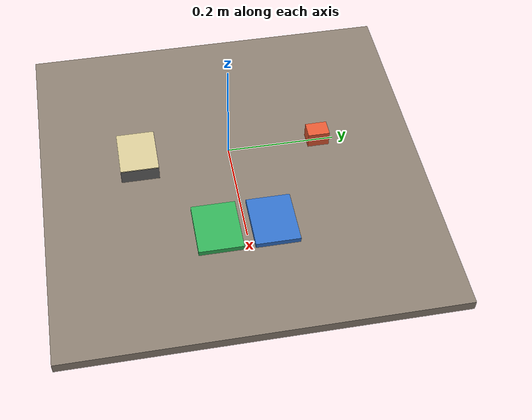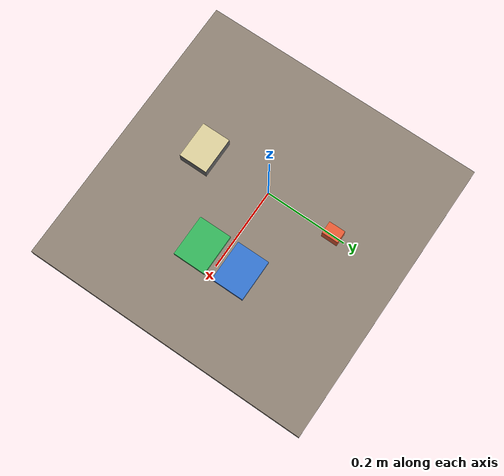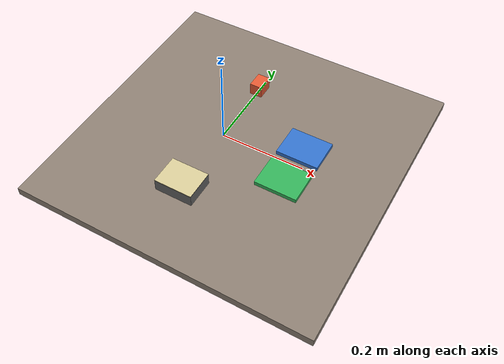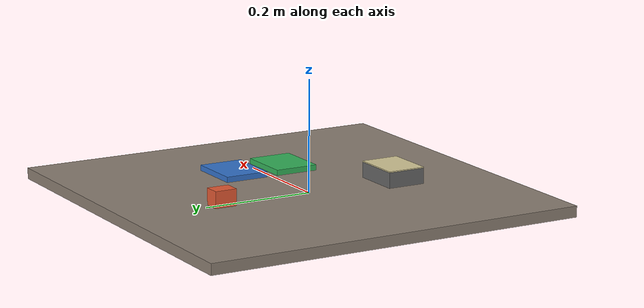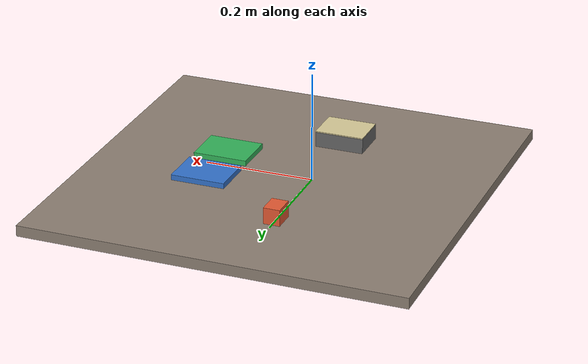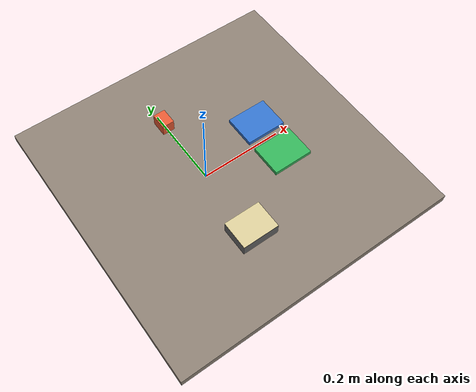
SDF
<?xml version="1.0"?>

<sdf version="1.9">
  <world name="omx_cell_workcell">
    <physics name="physics" type="ignored">
      <max_step_size>0.002</max_step_size><real_time_factor>1</real_time_factor>
    </physics>
    <plugin filename="gz-sim-physics-system" name="gz::sim::systems::Physics"/>
    <plugin filename="gz-sim-user-commands-system" name="gz::sim::systems::UserCommands"/>
    <plugin filename="gz-sim-scene-broadcaster-system" name="gz::sim::systems::SceneBroadcaster"/>
    <light name="sun" type="directional">
      <pose>0 0 10 0 0 0</pose><diffuse>0.9 0.9 0.9 1</diffuse><direction>-0.3 0.2 -1</direction>
    </light>

    <model name="table">
      <static>true</static>
      <pose>0.05 0 -0.01 0 0 0</pose>
      <link name="top">
        <collision name="collision">
          <geometry><box><size>0.7 0.7 0.02</size></box></geometry>
          <surface><friction><ode><mu>1.0</mu><mu2>1.0</mu2></ode></friction></surface>
        </collision>
        <visual name="visual">
          <geometry><box><size>0.7 0.7 0.02</size></box></geometry>
          <material><diffuse>0.55 0.5 0.45 1</diffuse></material>
        </visual>
      </link>
    </model>

    <model name="pallet_a">
      <static>true</static>
      <pose>0.18 0.05 0.005 0 0 0</pose>
      <link name="plate">
        <collision name="collision">
          <geometry><box><size>0.10 0.08 0.01</size></box></geometry>
          <surface><friction><ode><mu>1.0</mu><mu2>1.0</mu2></ode></friction></surface>
        </collision>
        <visual name="visual">
          <geometry><box><size>0.10 0.08 0.01</size></box></geometry>
          <material><diffuse>0.2 0.45 0.8 1</diffuse></material>
        </visual>
      </link>
    </model>

    <model name="pallet_b">
      <static>true</static>
      <pose>0.18 -0.05 0.005 0 0 0</pose>
      <link name="plate">
        <collision name="collision">
          <geometry><box><size>0.10 0.08 0.01</size></box></geometry>
          <surface><friction><ode><mu>1.0</mu><mu2>1.0</mu2></ode></friction></surface>
        </collision>
        <visual name="visual">
          <geometry><box><size>0.10 0.08 0.01</size></box></geometry>
          <material><diffuse>0.2 0.7 0.35 1</diffuse></material>
        </visual>
      </link>
    </model>

    <model name="sheet_stand">
      <static>true</static>
      <pose>0 -0.17 0.014 0 0 0</pose>
      <link name="stand">
        <collision name="collision">
          <geometry><box><size>0.09 0.07 0.028</size></box></geometry>
        </collision>
        <visual name="visual">
          <geometry><box><size>0.09 0.07 0.028</size></box></geometry>
          <material><diffuse>0.4 0.4 0.4 1</diffuse></material>
        </visual>
      </link>
    </model>

    <model name="slip_sheet_0">
      <pose>0 -0.17 0.029 0 0 0</pose>
      <link name="sheet">
        <inertial>
          <mass>0.005</mass>
          <inertia><ixx>2.0e-6</ixx><iyy>3.4e-6</iyy><izz>5.4e-6</izz><ixy>0</ixy><ixz>0</ixz><iyz>0</iyz></inertia>
        </inertial>
        <collision name="collision">
          <geometry><box><size>0.09 0.07 0.002</size></box></geometry>
        </collision>
        <visual name="visual">
          <geometry><box><size>0.09 0.07 0.002</size></box></geometry>
          <material><diffuse>0.85 0.8 0.6 1</diffuse></material>
        </visual>
      </link>
    </model>

    <!-- Infeed block: 40 x 30 x 30 mm, 20 g. Inertia = m/12 * (b^2 + c^2). -->
    <model name="infeed_block">
      <pose>0 0.17 0.015 0 0 1.5707963267948966</pose>
      <link name="block">
        <inertial>
          <mass>0.02</mass>
          <inertia><ixx>3.0e-6</ixx><iyy>4.17e-6</iyy><izz>4.17e-6</izz><ixy>0</ixy><ixz>0</ixz><iyz>0</iyz></inertia>
        </inertial>
        <collision name="collision">
          <geometry><box><size>0.04 0.03 0.03</size></box></geometry>
          <surface><friction><ode><mu>1.0</mu><mu2>1.0</mu2></ode></friction></surface>
        </collision>
        <visual name="visual">
          <geometry><box><size>0.04 0.03 0.03</size></box></geometry>
          <material><diffuse>0.9 0.35 0.2 1</diffuse></material>
        </visual>
      </link>
    </model>

  </world>
</sdf>
